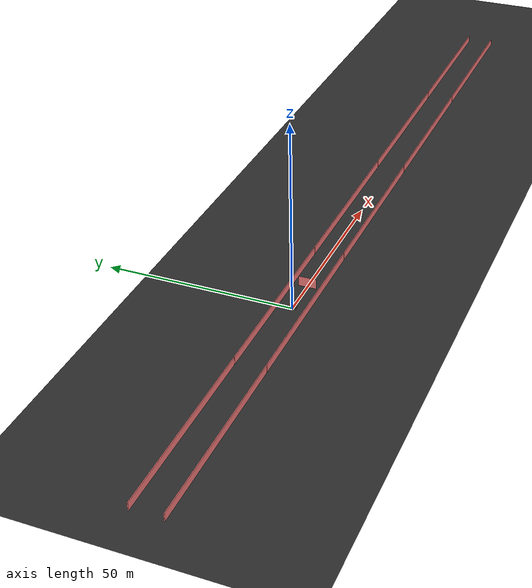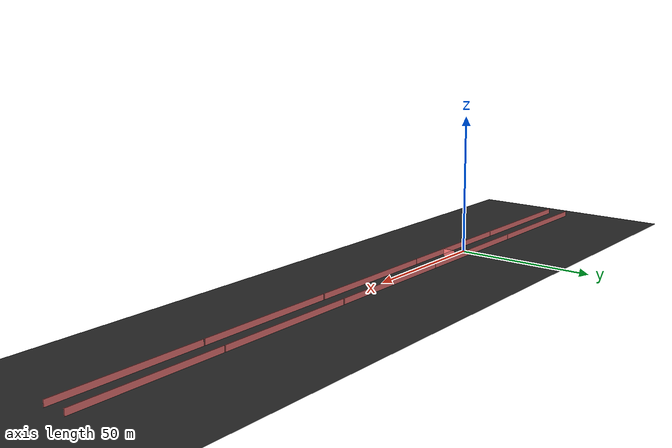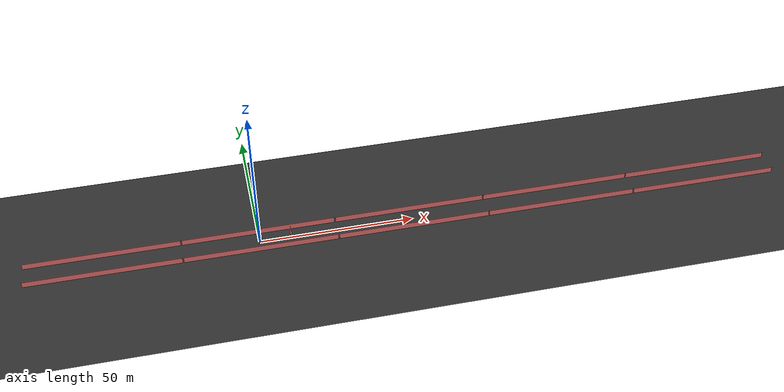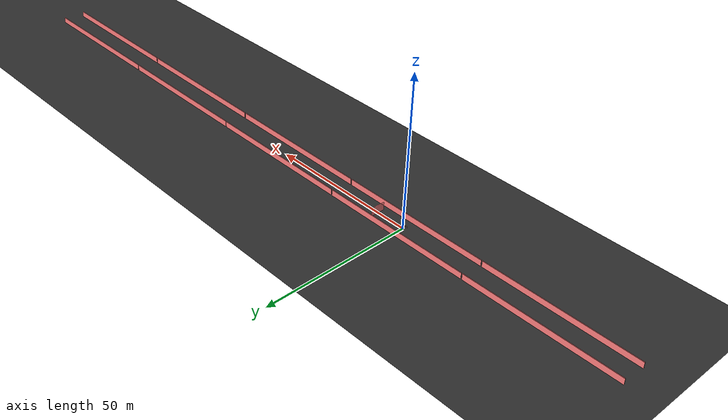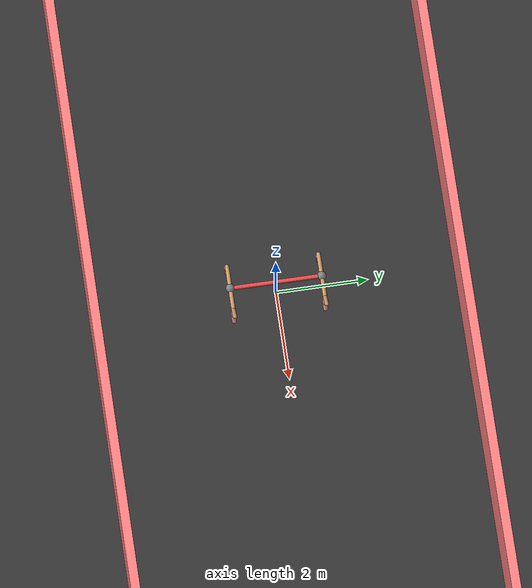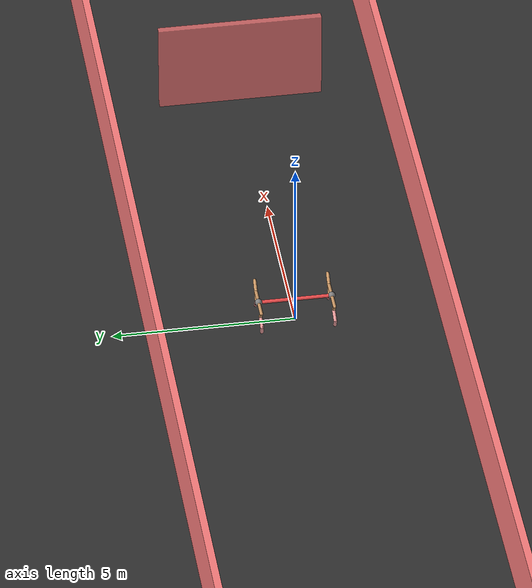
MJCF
<mujoco model="cheetah">
  <compiler angle="radian" coordinate="local" inertiafromgeom="true" settotalmass="14"/>
  <default>
    <joint armature=".1" damping=".01" limited="true" solimplimit="0 .8 .03" solreflimit=".02 1" stiffness="8"/>
    <geom conaffinity="0" condim="3" contype="1" friction=".4 .1 .1" rgba="0.8 0.6 .4 1" solimp="0.0 0.8 0.01" solref="0.02 1"/>
    <motor ctrllimited="true" ctrlrange="-1 1"/>
  </default>
  <size nstack="300000" nuser_geom="1"/>
  <option gravity="0 0 -9.81" timestep="0.01"/>
  <asset>

    <texture builtin="gradient" height="100" rgb1="1 1 1" rgb2="0 0 0" type="skybox" width="100"/>
    <texture builtin="flat" height="1278" mark="cross" markrgb="1 1 1" name="texgeom" random="0.01" rgb1="0.8 0.6 0.4" rgb2="0.8 0.6 0.4" type="cube" width="127"/>
    <texture builtin="checker" height="100" name="texplane" rgb1="#2c5987" rgb2="#1f4060" type="2d" width="100"/>
    <material name="MatPlane" reflectance="0.5" shininess="1" specular="1" texrepeat="60 60" texture="texplane"/>
    <texture builtin="checker" height="100" name="texbox" rgb1="#ff66ff" rgb2="#ff66ff" type="2d" width="100"/>
    <material name="BoxMat" reflectance="0.5" shininess="1" specular="1" texrepeat="60 60" texture="texbox"/>

  </asset>
  <worldbody>
    <light cutoff="100" diffuse="1 1 1" dir="-0 0 -1.3" directional="true" exponent="1" pos="0 0 1.3" specular=".1 .1 .1"/>
    <light cutoff="100" diffuse="1 1 1" dir="-0 0 -1.3" directional="true" exponent="1" pos="0 0 1.3" specular=".1 .1 .1"/>
    <geom conaffinity="1" condim="3" material="MatPlane" name="floor" pos="65 0 0" rgba="0.2 0.2 0.2 1" size="150 40 40" type="plane"/>
    <geom conaffinity="1" condim="3" name="wall1" type="box" size="24.8 0.1 1.0" pos="0  -4 1.0"  euler='0 0 0'  rgba="1 0.5 0.5 1"/>
    <geom conaffinity="1" condim="3" name="wall2" type="box" size="24.8 0.1 1.0" pos="0   4 1.0"  euler='0 0 0'  rgba="1 0.5 0.5 1"/>
    <geom conaffinity="1" condim="3" name="wall3" type="box" size="24.8 0.1 1.0" pos="50 -4 1.0"  euler='0 0 0'  rgba="1 0.5 0.5 1"/>
    <geom conaffinity="1" condim="3" name="wall4" type="box" size="24.8 0.1 1.0" pos="50  4 1.0"  euler='0 0 0'  rgba="1 0.5 0.5 1"/>
    <geom conaffinity="1" condim="3" name="wall5" type="box" size="24.8 0.1 1.0" pos="100 -4 1.0"  euler='0 0 0'  rgba="1 0.5 0.5 1"/>
    <geom conaffinity="1" condim="3" name="wall6" type="box" size="24.8 0.1 1.0" pos="100  4 1.0"  euler='0 0 0'  rgba="1 0.5 0.5 1"/>
    <geom conaffinity="1" condim="3" name="wall7" type="box" size="24.8 0.1 1.0" pos="150 -4 1.0"  euler='0 0 0'  rgba="1 0.5 0.5 1"/>
    <geom conaffinity="1" condim="3" name="wall8" type="box" size="24.8 0.1 1.0" pos="150  4 1.0"  euler='0 0 0'  rgba="1 0.5 0.5 1"/>
    <geom conaffinity="1" condim="3" name="wall9" type="box" size="24.8 0.1 1.0" pos="-50  4 1.0"  euler='0 0 0'  rgba="1 0.5 0.5 1"/>
    <geom conaffinity="1" condim="3" name="wall10" type="box" size="24.8 0.1 1.0" pos="-50  -4 1.0"  euler='0 0 0'  rgba="1 0.5 0.5 1"/>

    <body name="obj1" pos="5 0 .7">
        <geom conaffinity="1" condim="3" name="obj_geom" pos='5 0 .7' density="0.0001" type="box" size=".1 2.3 1.3"  rgba="1 0.5 0.5 .8"/>
          <joint axis="1 0 0" damping=".2" name="wall_joint" pos="5 0 .7" range="-5000 5000" stiffness=".0" type="slide"/>
    </body>

wallpos1
    <body name="torso" pos="0 -1 .7">
      <site name="t1" pos="0.0 0 0" size="0.1"/>
      <camera name="track" mode="trackcom" pos="0 -3 0.3" xyaxes="1 0 0 0 0 1"/>
      <joint armature="0" axis="1 0 0" damping="0" limited="false" name="rootx" pos="0 0 0" stiffness="0" type="slide"/>
      <joint armature="0" axis="0 0 1" damping="0" limited="false" name="rootz" pos="0 0 0" stiffness="0" type="slide"/>
      <joint armature="0" axis="0 1 0" damping="0" limited="false" name="rooty" pos="0 0 0" stiffness="0" type="hinge"/>
      <geom fromto="-.5 0 0 .5 0 0" name="torso" size="0.046" type="capsule"/>
      <geom axisangle="0 1 0 .87" name="head" pos=".6 0 .1" size="0.046 .15" type="capsule"/>
      <body name="bthigh" pos="-.5 0 0">
        <joint axis="0 1 0" damping="6" name="bthigh" pos="0 0 0" range="-.52 1.05" stiffness="240" type="hinge"/>
        <geom axisangle="0 1 0 -3.8" name="bthigh" pos=".1 0 -.13" size="0.046 .145" type="capsule"/>
        <body name="bshin" pos=".16 0 -.25">
          <joint axis="0 1 0" damping="4.5" name="bshin" pos="0 0 0" range="-.785 .785" stiffness="180" type="hinge"/>
          <geom axisangle="0 1 0 -2.03" name="bshin" pos="-.14 0 -.07" rgba="0.9 0.6 0.6 1" size="0.046 .15" type="capsule"/>
          <body name="bfoot" pos="-.28 0 -.14">
            <joint axis="0 1 0" damping="3" name="bfoot" pos="0 0 0" range="-.4 .785" stiffness="120" type="hinge"/>
            <geom axisangle="0 1 0 -.27" name="bfoot" pos=".03 0 -.097" rgba="0.9 0.6 0.6 1" size="0.046 .094" type="capsule"/>
          </body>
        </body>
      </body>
      <body name="fthigh" pos=".5 0 0">
        <joint axis="0 1 0" damping="4.5" name="fthigh" pos="0 0 0" range="-1 .7" stiffness="180" type="hinge"/>
        <geom axisangle="0 1 0 .52" name="fthigh" pos="-.07 0 -.12" size="0.046 .133" type="capsule"/>
        <body name="fshin" pos="-.14 0 -.24">
          <joint axis="0 1 0" damping="3" name="fshin" pos="0 0 0" range="-1.2 .87" stiffness="120" type="hinge"/>
          <geom axisangle="0 1 0 -.6" name="fshin" pos=".065 0 -.09" rgba="0.9 0.6 0.6 1" size="0.046 .106" type="capsule"/>
          <body name="ffoot" pos=".13 0 -.18">
            <joint axis="0 1 0" damping="1.5" name="ffoot" pos="0 0 0" range="-.5 .5" stiffness="60" type="hinge"/>
            <geom axisangle="0 1 0 -.6" name="ffoot" pos=".045 0 -.07" rgba="0.9 0.6 0.6 1" size="0.046 .07" type="capsule"/>
          </body>
        </body>
      </body>
    </body>
    <!-- second cheetah definition -->
    <body name="torso2" pos="0 1 .7">
      <site name="t2" pos="0 0 0" size="0.1"/>
      <camera name="track2" mode="trackcom" pos="0 -3 0.3" xyaxes="1 0 0 0 0 1"/>
      <joint armature="0" axis="1 0 0" damping="0" limited="false" name="rootx2" pos="0 0 0" stiffness="0" type="slide"/>
      <joint armature="0" axis="0 0 1" damping="0" limited="false" name="rootz2" pos="0 0 0" stiffness="0" type="slide"/>
      <joint armature="0" axis="0 1 0" damping="0" limited="false" name="rooty2" pos="0 0 0" stiffness="0" type="hinge"/>
      <geom fromto="-.5 0 0 .5 0 0" name="torso2" size="0.046" type="capsule"/>
      <geom axisangle="0 1 0 .87" name="head2" pos=".6 0 .1" size="0.046 .15" type="capsule"/>
      <body name="bthigh2" pos="-.5 0 0">
        <joint axis="0 1 0" damping="6" name="bthigh2" pos="0 0 0" range="-.52 1.05" stiffness="240" type="hinge"/>
        <geom axisangle="0 1 0 -3.8" name="bthigh2" pos=".1 0 -.13" size="0.046 .145" type="capsule"/>
        <body name="bshin2" pos=".16 0 -.25">
          <joint axis="0 1 0" damping="4.5" name="bshin2" pos="0 0 0" range="-.785 .785" stiffness="180" type="hinge"/>
          <geom axisangle="0 1 0 -2.03" name="bshin2" pos="-.14 0 -.07" rgba="0.9 0.6 0.6 1" size="0.046 .15" type="capsule"/>
          <body name="bfoot2" pos="-.28 0 -.14">
            <joint axis="0 1 0" damping="3" name="bfoot2" pos="0 0 0" range="-.4 .785" stiffness="120" type="hinge"/>
            <geom axisangle="0 1 0 -.27" name="bfoot2" pos=".03 0 -.097" rgba="0.9 0.6 0.6 1" size="0.046 .094" type="capsule"/>
          </body>
        </body>
      </body>
      <body name="fthigh2" pos=".5 0 0">
        <joint axis="0 1 0" damping="4.5" name="fthigh2" pos="0 0 0" range="-1 .7" stiffness="180" type="hinge"/>
        <geom axisangle="0 1 0 .52" name="fthigh2" pos="-.07 0 -.12" size="0.046 .133" type="capsule"/>
        <body name="fshin2" pos="-.14 0 -.24">
          <joint axis="0 1 0" damping="3" name="fshin2" pos="0 0 0" range="-1.2 .87" stiffness="120" type="hinge"/>
          <geom axisangle="0 1 0 -.6" name="fshin2" pos=".065 0 -.09" rgba="0.9 0.6 0.6 1" size="0.046 .106" type="capsule"/>
          <body name="ffoot2" pos=".13 0 -.18">
            <joint axis="0 1 0" damping="1.5" name="ffoot2" pos="0 0 0" range="-.5 .5" stiffness="60" type="hinge"/>
            <geom axisangle="0 1 0 -.6" name="ffoot2" pos=".045 0 -.07" rgba="0.9 0.6 0.6 1" size="0.046 .07" type="capsule"/>
          </body>
        </body>
      </body>
    </body>

  </worldbody>
  <tendon>
    <spatial name="tendon1" width="0.05" rgba=".95 .3 .3 1" limited="true" range="1.5 3.5" stiffness="0.1">
        <site site="t1"/>
        <site site="t2"/>
    </spatial>
  </tendon>-
  <actuator>
    <motor gear="120" joint="bthigh" name="bthigh"/>
    <motor gear="90" joint="bshin" name="bshin"/>
    <motor gear="60" joint="bfoot" name="bfoot"/>
    <motor gear="120" joint="fthigh" name="fthigh"/>
    <motor gear="60" joint="fshin" name="fshin"/>
    <motor gear="30" joint="ffoot" name="ffoot"/>
    <motor gear="120" joint="bthigh2" name="bthigh2"/>
    <motor gear="90" joint="bshin2" name="bshin2"/>
    <motor gear="60" joint="bfoot2" name="bfoot2"/>
    <motor gear="120" joint="fthigh2" name="fthigh2"/>
    <motor gear="60" joint="fshin2" name="fshin2"/>
    <motor gear="30" joint="ffoot2" name="ffoot2"/>
    <motor gear="120" joint="wall_joint" name="wall_joint_ac"/>
  </actuator>
</mujoco>
